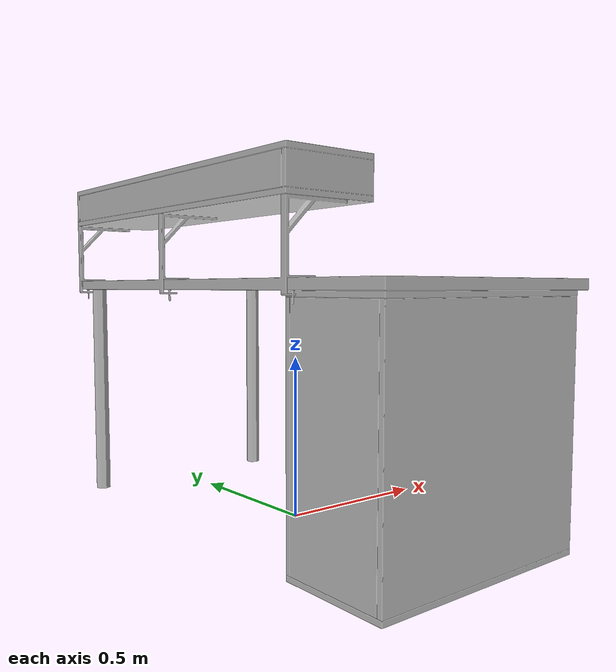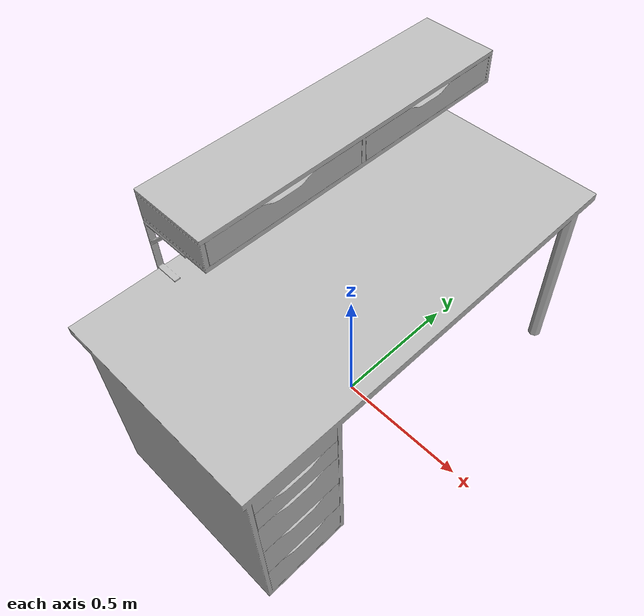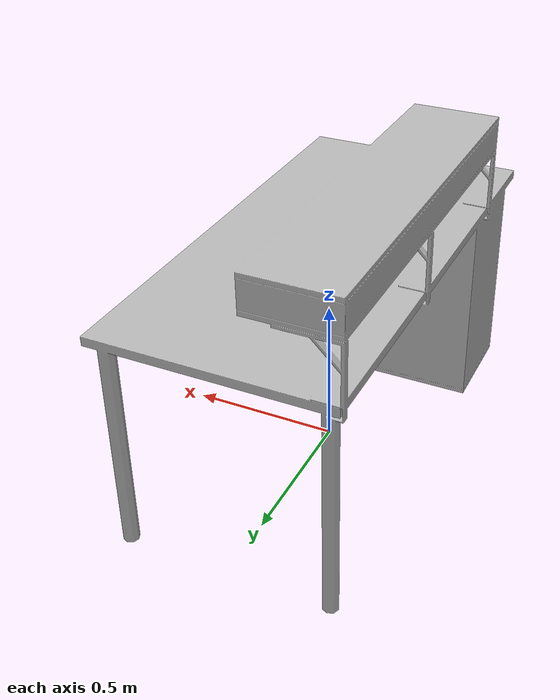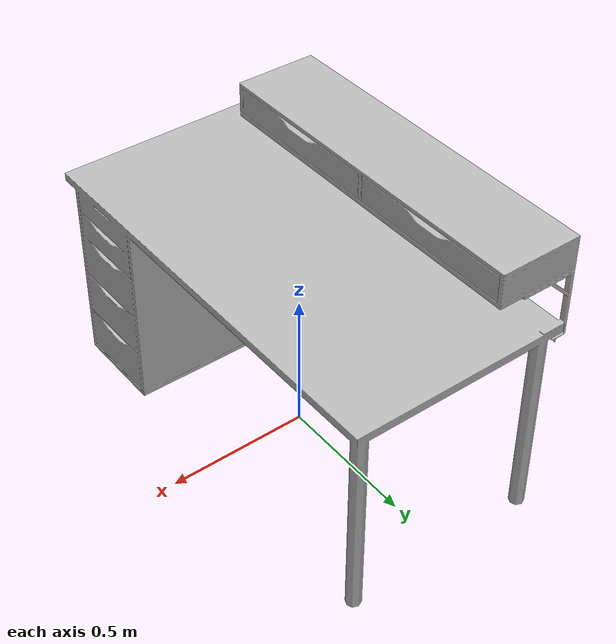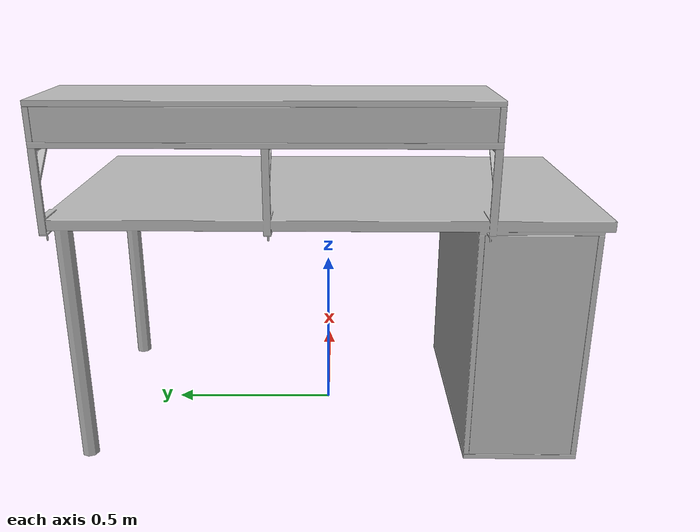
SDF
<?xml version='1.0'?>
<sdf version='1.4'>
  <model name='s__714'>
    <pose>0 0 0 0 0 0</pose>
    <static>true</static>
    <link name='link'>
      <collision name='collision'>
        <pose>0 0 0 0 0 0</pose>
        <geometry>
          <box>
            <size>0.76 1.5 2</size>
          </box>
        </geometry>
      </collision>
      <visual name='visual'>
        <pose>0 0 0 0 0 0</pose>
        <geometry>
          <mesh><uri>model://s__714/s__714.dae</uri></mesh>
        </geometry>
      </visual>
    </link>
  </model>
</sdf>
